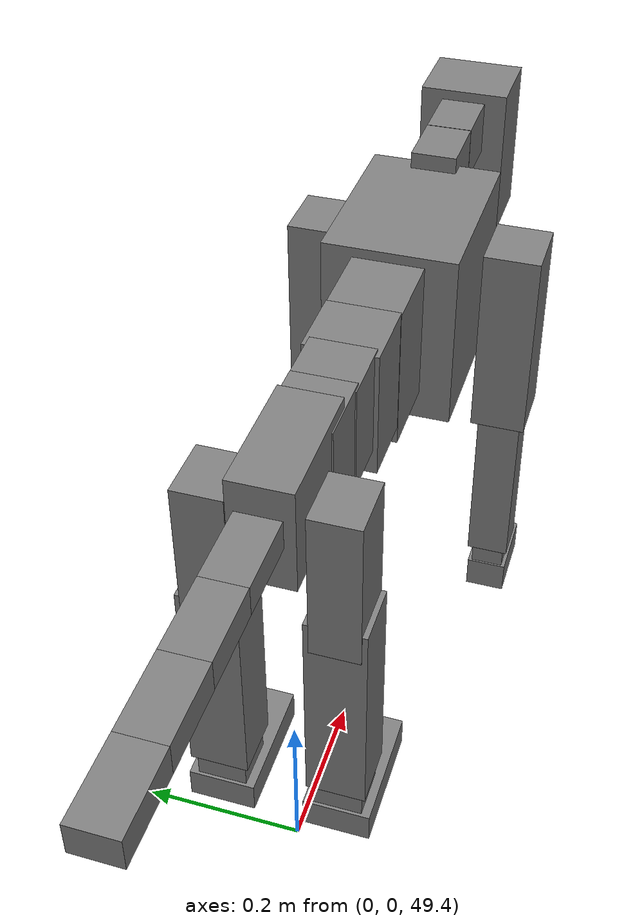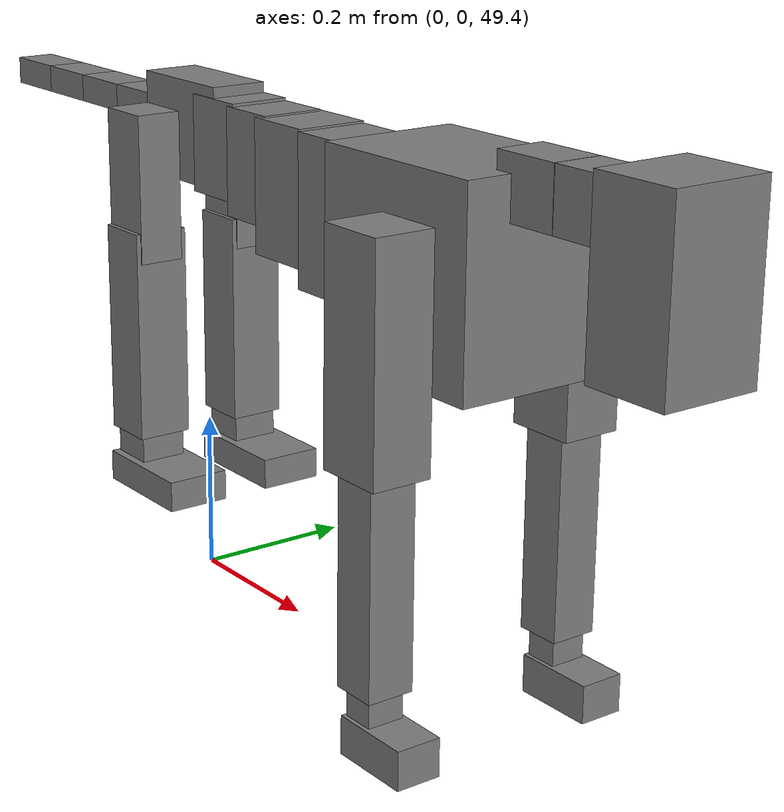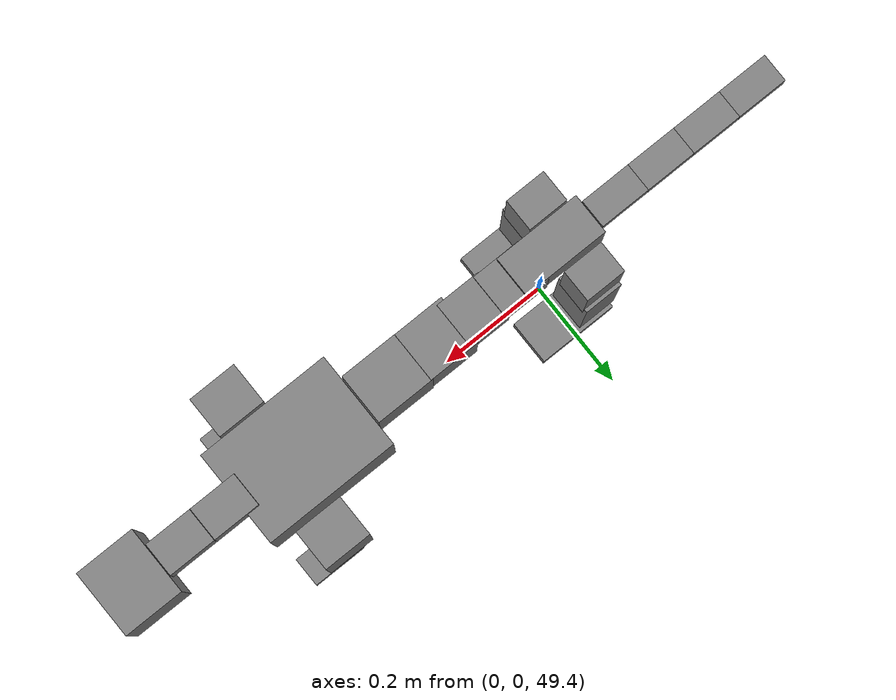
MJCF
<mujoco model="dog">

    <default>
        <joint armature="0.02" stiffness="1" damping="0.2" limited="true"/>
        <geom condim="3" friction="1 0.05 0.05" margin="0.01"/>
        <motor ctrllimited="true" ctrlrange="-1.0 1.0" forcelimited="true" gear="50"/>
    </default>

    <compiler inertiafromgeom="true" angle="radian"/>

    <option timestep="0.016" iterations="50" tolerance="1e-10" solver="Newton" jacobian="dense" cone="pyramidal"/>

    <size nconmax="20000" njmax="60000" nstack="5000000"/>
    <visual>
        <map force="0.1" zfar="30"/>
        <rgba haze="0.15 0.25 0.35 1"/>
        <quality shadowsize="2048"/>
        <global offwidth="800" offheight="800"/>
    </visual>

    <asset>
        <texture type="skybox" builtin="gradient" rgb1="0.3 0.5 0.7" rgb2="0 0 0" width="512" height="512"/>
        <texture name="texplane" type="2d" builtin="checker" rgb1=".2 .3 .4" rgb2=".1 0.15 0.2" width="512" height="512"
                 mark="cross" markrgb=".8 .8 .8"/>
        <texture name="texgeom" type="cube" builtin="flat" mark="cross" width="127" height="1278" rgb1="0.8 0.6 0.4"
                 rgb2="0.8 0.6 0.4" markrgb="1 1 1" random="0.01"/>

        <material name="matplane" reflectance="0.3" texture="texplane" texrepeat="1 1" texuniform="true"/>
        <material name="matgeom" texture="texgeom" texuniform="true" rgba="0.8 0.6 .4 1"/>
    </asset>

    <worldbody>
        <geom name="floor" pos="0 0 0" size="0 0 .25" type="plane" material="matplane" condim="3"/>

        <light directional="false" diffuse=".2 .2 .2" specular="0 0 0" pos="0 0 5" dir="0 0 -1" castshadow="false"/>
        <light mode="targetbodycom" target="torso" directional="false" diffuse=".8 .8 .8" specular="0.3 0.3 0.3"
               pos="0 0 4.0" dir="0 0 -1"/>

        <body name="root" pos="0 0 50">
            <freejoint name="root_1"/>
            <geom type="box" pos="0 0 -0.02" size="0.0774  0.0358  0.063" density="2030"/>

            <body name="spine1" pos="0.054 0 0">
                <joint name="spine1_y" axis="0 1 0" range="0 0.7" limited="true"/>
                <geom type="box" pos="0.02375 0 -0.03" size="0.04375  0.0375  0.05985" density="2030"/>

                <body name="spine2" pos="0.0612 0 0">
                    <joint name="spine2_y" axis="0 1 0" range="-0.15 0.15" limited="true"/>
                    <geom type="box" pos="0.03555  0  -0.04" size="0.04055  0.039  0.06615" density="2030"/>

                    <body name="spine3" pos="0.0730 0 0">
                        <joint name="spine3_y" axis="0 1 0" range="-0.15 0.15" limited="true"/>
                        <geom type="box" pos="0.03555  0  -0.057" size="0.04555  0.0445  0.081" density="2030"/>

                        <body name="spine4" pos="0.0780 0 0">
                            <joint name="spine4_y" axis="0 1 0" range="-0.15 0.15" limited="true"/>
                            <geom type="box" pos="0.05265  0  -0.07" size="0.05265  0.045  0.09135" density="2030"/>

                            <body name="torso" pos="0.1082 0 0">
                                <joint name="torso_y" axis="0 1 0" range="-0.15 0.15" limited="true"/>
                                <geom type="box" pos="0.11925  0  -0.085" size="0.11925  0.085  0.11745"
                                      density="2030"/>

                                <body name="neck1" pos="0.2160  0   0.0180">
                                    <joint name="neck1_y" axis="0 1 0" range="-1.2  -1" limited="true"/>
                                    <geom type="box" pos="0.0423  0  0" size="0.0423  0.03  0.036" density="2325"/>

                                    <body name="neck2" pos="0.0853  0  0">
                                        <joint name="neck2_y" axis="0 1 0" range="0.1  0" limited="true"/>
                                        <geom type="box" pos="0.0423  0  0" size="0.0423  0.03  0.036" density="2325"/>

                                        <body name="head" pos="0.0853  0  0">
                                            <joint name="head_y" axis="0 1 0" range="-0.3  -0.2" limited="true"/>
                                            <geom type="box" pos="0.0531  0  -0.055" size="0.0531  0.06  0.1044"
                                                  density="4030"/>

                                        </body>
                                    </body>
                                </body>

                                <body name="front_shoulder" pos="0.156  0   -0.0480">
                                    <joint name="front_shoulder_y" axis="0 1 0" range="-1 1.5" limited="true"/>
                                    <geom type="box" pos="0 0.13 -0.1062" size="0.0431  0.0368  0.1328" density="1158"/>
                                    <geom type="box" pos="0 -0.13 -0.1062" size="0.0431  0.0368  0.1328"
                                          density="1158"/>

                                    <body name="front_elbow" pos="0  0  -0.2124">
                                        <joint name="front_elbow_y" axis="0 1 0" range="-2 0" limited="true"/>
                                        <geom type="box" pos="0 0.13 -0.1360" size="0.0283  0.0289  0.1360"
                                              density="1081"/>
                                        <geom type="box" pos="0 -0.13 -0.1360" size="0.0283  0.0289  0.1360"
                                              density="1081"/>

                                        <body name="front_wrist" pos="0  0  -0.2720">
                                            <joint name="front_wrist_y" axis="0 1 0" range="-0.2 0" limited="true"/>
                                            <geom type="box" pos="0 0.13 -0.0241" size="0.0202  0.0225  0.0372"
                                                  density="1664"/>
                                            <geom type="box" pos="0 -0.13 -0.0241" size="0.0202  0.0225  0.0372"
                                                  density="1664"/>

                                            <body name="front_finger_end" pos="0  0  -0.0482">
                                                <joint name="front_finger_y" axis="0 1 0" range="-0.4 1"
                                                       limited="true"/>
                                                <geom type="box" pos="0.0276  0.13  -0.0081"
                                                      size="0.0506  0.0276  0.0231" density="1515"/>
                                                <geom type="box" pos="0.0276  -0.13  -0.0081"
                                                      size="0.0506  0.0276  0.0231" density="1515"/>

                                            </body>

                                        </body>
                                    </body>
                                </body>

                            </body>
                        </body>
                    </body>
                </body>
            </body>

            <body name="back_hip" pos="-0.03 0 -0.018">
                <joint name="back_hip_y" axis="0 1 0" range="-1.5 0.3" limited="true"/>
                <geom type="box" pos="0 0.07 -0.0699" size="0.0365  0.0286  0.0927" density="1154"/>
                <geom type="box" pos="0 -0.07 -0.0699" size="0.0365  0.0286  0.0927" density="1154"/>

                <body name="back_knee" pos="0  0  -0.1397">
                    <joint name="back_knee_y" axis="0 1 0" range="0 2.8" limited="true"/>
                    <geom type="box" pos="0 0.07 -0.1173" size="0.0352  0.0347  0.1328" density="1227"/>
                    <geom type="box" pos="0 -0.07 -0.1173" size="0.0352  0.0347  0.1328" density="1227"/>

                    <body name="back_ankle" pos="0  0  -0.2346">
                        <joint name="back_ankle_y" axis="0 1 0" range="-2.2 0" limited="true"/>
                        <geom type="box" pos="0 0.07 -0.0319" size="0.0294  0.0294  0.0432" density="1284"/>
                        <geom type="box" pos="0 -0.07 -0.0319" size="0.0294  0.0294  0.0432" density="1284"/>

                        <body name="back_toe_end" pos="0  0  -0.0638">
                            <joint name="back_toe_y" axis="0 1 0" range="-0.4 1" limited="true"/>
                            <geom type="box" pos="0.0398  0.07  -0.0041" size="0.0730  0.0398  0.0191" density="1515"/>
                            <geom type="box" pos="0.0398  -0.07  -0.0041" size="0.0730  0.0398  0.0191" density="1515"/>

                        </body>
                    </body>
                </body>
            </body>

            <body name="tail1" pos="-0.074 0 -0.006">
                <joint name="tail1_y" axis="0 1 0" range="-0.2 0.2" limited="true"/>
                <geom type="box" pos="-0.0536  0  0" size="0.045  0.025  0.0175" density="1587"/>

                <body name="tail2" pos="-0.09 0 0">
                    <joint name="tail2_y" axis="0 1 0" range="-0.2 0.2" limited="true"/>
                    <geom type="box" pos="-0.0536  0  0" size="0.045  0.025  0.0175" density="1587"/>

                    <body name="tail3" pos="-0.09 0 0">
                        <joint name="tail3_y" axis="0 1 0" range="-0.2 0.2" limited="true"/>
                        <geom type="box" pos="-0.0536  0  0" size="0.045  0.025  0.0175" density="1587"/>

                        <body name="tail4" pos="-0.09 0 0">
                            <joint name="tail4_y" axis="0 1 0" range="-0.2 0.2" limited="true"/>
                            <geom type="box" pos="-0.0536  0  0" size="0.045  0.025  0.0175" density="1587"/>

                        </body>
                    </body>
                </body>
            </body>
        </body>
    </worldbody>

    <actuator>
        <motor joint="spine1_y" forcerange="-150 150     "/>
        <motor joint="spine2_y" forcerange="-150 150     "/>
        <motor joint="spine3_y" forcerange="-150 150     "/>
        <motor joint="spine4_y" forcerange="-150 150     "/>
        <motor joint="torso_y" forcerange="-150 150     "/>
        <motor joint="neck1_y" forcerange="-100 100       "/>
        <motor joint="neck2_y" forcerange="-100 100       "/>
        <motor joint="head_y" forcerange="-150 150       "/>
        <motor joint="front_shoulder_y" forcerange="-180.86 164.66"/>
        <motor joint="front_elbow_y" forcerange="-159.69 150.37"/>
        <motor joint="front_wrist_y" forcerange="-120.51 59.39"/>
        <motor joint="front_finger_y" forcerange="-41.10 66.03"/>
        <motor joint="back_hip_y" forcerange="-258.39 323.46"/>
        <motor joint="back_knee_y" forcerange="-349.05 356.11"/>
        <motor joint="back_angle_y" forcerange="-207.74 163.36"/>
        <motor joint="back_toe_y" forcerange="-98.98 139.49"/>
        <motor joint="tail1_y" forcerange="-50 50     "/>
        <motor joint="tail2_y" forcerange="-50 50     "/>
        <motor joint="tail3_y" forcerange="-50 50     "/>
        <motor joint="tail4_y" forcerange="-50 50     "/>
    </actuator>
</mujoco>
